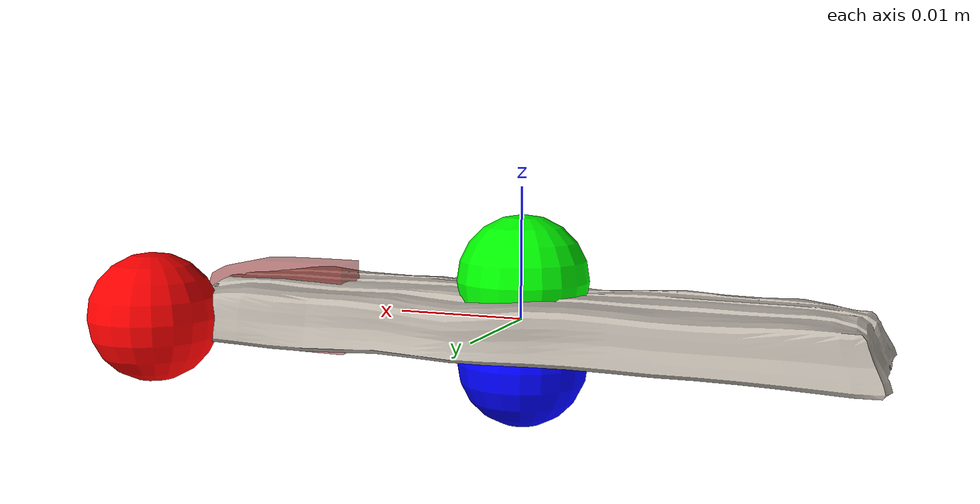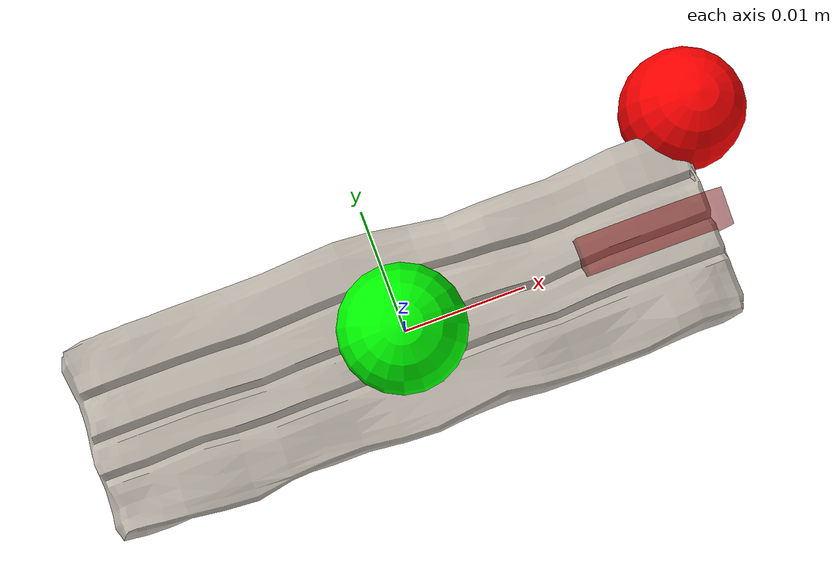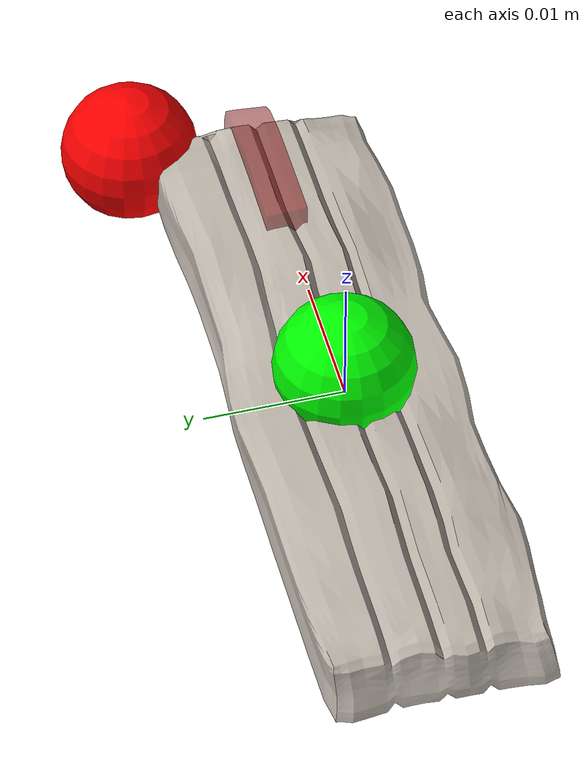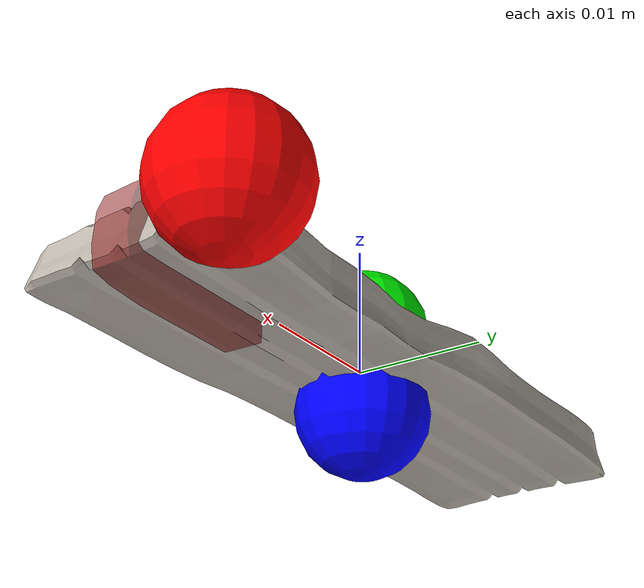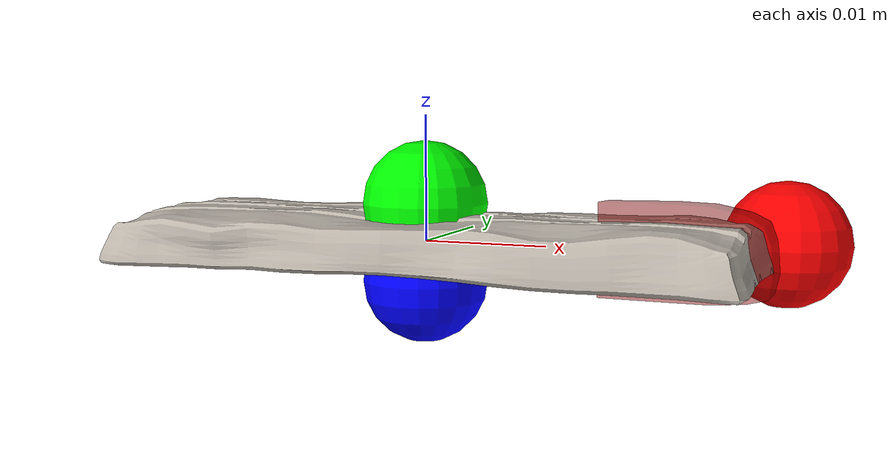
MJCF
<?xml version='1.0' encoding='UTF-8'?>
<mujoco model="model">
  <compiler angle="radian"/>
  <asset>
    <mesh file="visual/CreamCheese008.obj" name="CreamCheese008_vis"/>
    <texture file="visual/T_BC001.png" name="CreamCheese008_material" type="2d"/>
    <material name="CreamCheese008_material" rgba="1 1 1 1.0" texture="CreamCheese008_material" shininess="-35.000003814697266" specular="0.3103448502657381"/>
    <mesh file="collision/CreamCheese008001.obj" name="CreamCheese008001_mesh"/>
  </asset>
  <default>
    <default class="visual">
      <geom conaffinity="0" contype="0" group="1" type="mesh"/>
    </default>
    <default class="collision">
      <geom group="0" rgba="0.5 0 0 0.5"/>
    </default>
    <default class="spawn">
      <geom group="0" rgba="1 1 1 0.5" contype="0" conaffinity="0"/>
      <site group="0" rgba="1 1 1 0.5"/>
    </default>
    <default class="region">
      <geom group="1" conaffinity="0" contype="0" rgba="0 1 0 0"/>
    </default>
  </default>
  <worldbody>
    <body>
      <body name="object">
        <geom mesh="CreamCheese008_vis" type="mesh" solimp="0.998 0.998 0.001" solref="0.001 1" density="100" friction="0.95 0.3 0.1" class="visual" material="CreamCheese008_material"/>
        <geom mesh="CreamCheese008001_mesh" type="mesh" class="collision"/>
      </body>
      <site rgba="1 0 0 1" size="0.005" pos="0.02689003 0.00901757 -8.367000000000036e-05" name="horizontal_radius_site"/>
      <site rgba="0 1 0 1" size="0.005" pos="-0.00015857500000000192 0.00011750500000000045 0.002983129999999999" name="top_site"/>
      <site rgba="0 0 1 1" size="0.005" pos="-0.00015857500000000192 0.00011750500000000045 -0.0031504700000000003" name="bottom_site"/>
    </body>
  </worldbody>
  <actuator/>
</mujoco>
